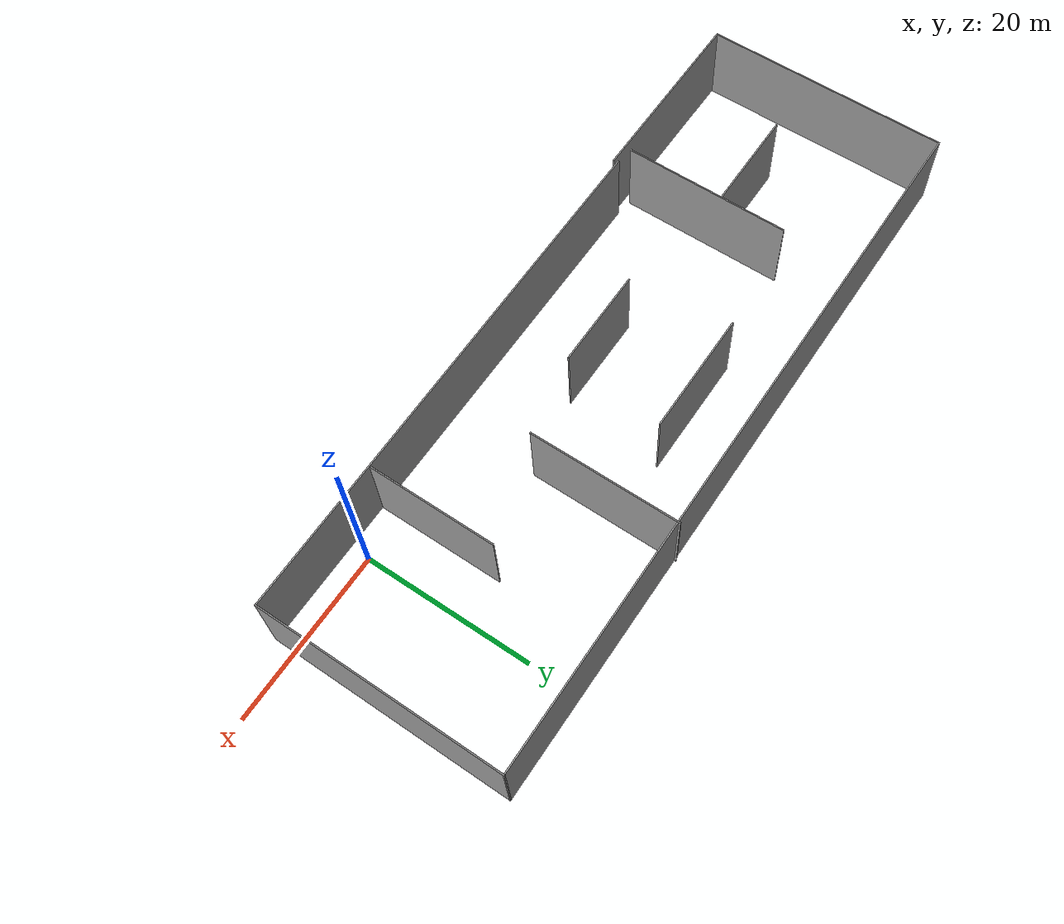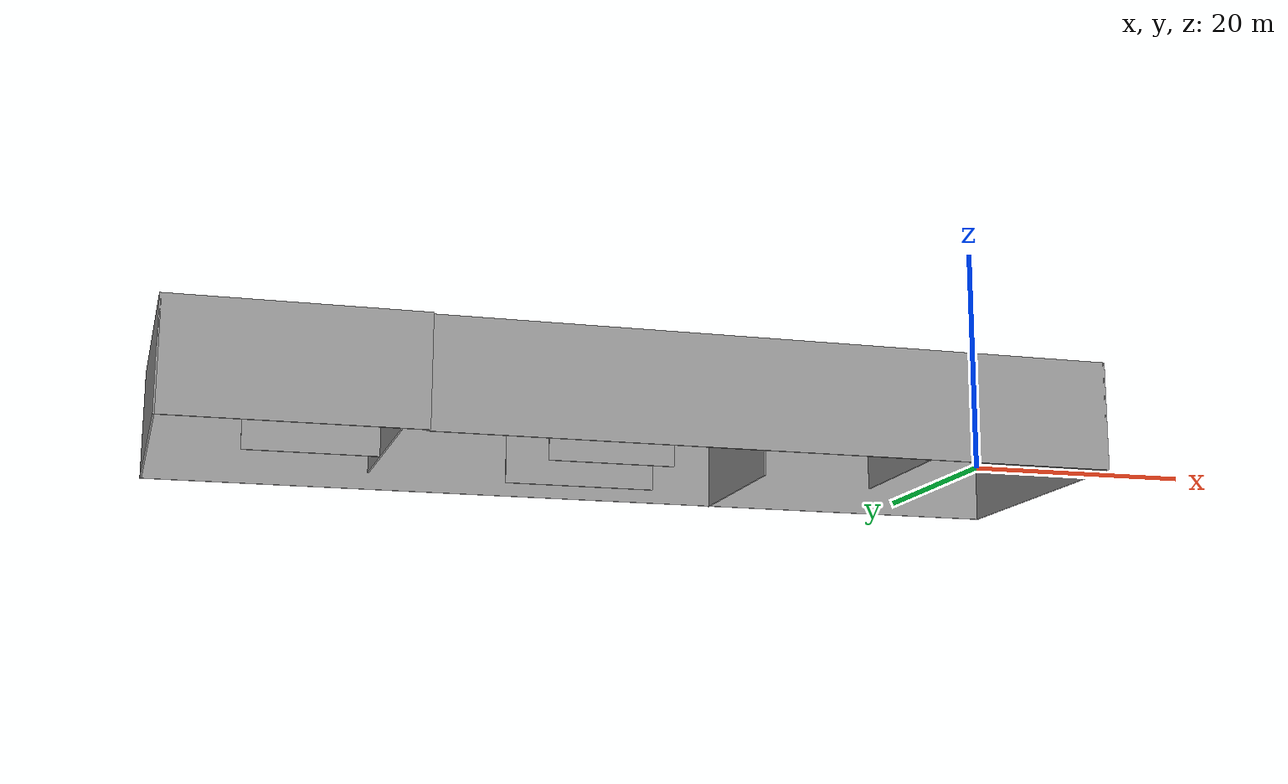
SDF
<?xml version='1.0'?>
<sdf version='1.7'>
  <model name='Untitled2'>
    <pose>-30.229 11.7135 0 0 -0 0</pose>
    <link name='Wall_12'>
      <collision name='Wall_12_Collision'>
        <geometry>
          <box>
            <size>15 0.15 10</size>
          </box>
        </geometry>
        <pose>0 0 5 0 -0 0</pose>
      </collision>
      <visual name='Wall_12_Visual'>
        <pose>0 0 5 0 -0 0</pose>
        <geometry>
          <box>
            <size>15 0.15 10</size>
          </box>
        </geometry>
        <material>
          <script>
            <uri>file://media/materials/scripts/gazebo.material</uri>
            <name>Gazebo/Grey</name>
          </script>
          <ambient>1 1 1 1</ambient>
        </material>
        <meta>
          <layer>0</layer>
        </meta>
      </visual>
      <pose>24.794 -6.5635 0 0 -0 1.5708</pose>
    </link>
    <link name='Wall_14'>
      <collision name='Wall_14_Collision'>
        <geometry>
          <box>
            <size>17.75 0.15 10</size>
          </box>
        </geometry>
        <pose>0 0 5 0 -0 0</pose>
      </collision>
      <visual name='Wall_14_Visual'>
        <pose>0 0 5 0 -0 0</pose>
        <geometry>
          <box>
            <size>17.75 0.15 10</size>
          </box>
        </geometry>
        <material>
          <script>
            <uri>file://media/materials/scripts/gazebo.material</uri>
            <name>Gazebo/Grey</name>
          </script>
          <ambient>1 1 1 1</ambient>
        </material>
        <meta>
          <layer>0</layer>
        </meta>
      </visual>
      <pose>13.011 5.8525 0 0 -0 -1.5708</pose>
    </link>
    <link name='Wall_16'>
      <collision name='Wall_16_Collision'>
        <geometry>
          <box>
            <size>14.25 0.15 10</size>
          </box>
        </geometry>
        <pose>0 0 5 0 -0 0</pose>
      </collision>
      <visual name='Wall_16_Visual'>
        <pose>0 0 5 0 -0 0</pose>
        <geometry>
          <box>
            <size>14.25 0.15 10</size>
          </box>
        </geometry>
        <material>
          <script>
            <uri>file://media/materials/scripts/gazebo.material</uri>
            <name>Gazebo/Grey</name>
          </script>
          <ambient>1 1 1 1</ambient>
        </material>
        <meta>
          <layer>0</layer>
        </meta>
      </visual>
      <pose>-2.034 7.2875 0 0 -0 0</pose>
    </link>
    <link name='Wall_18'>
      <collision name='Wall_18_Collision'>
        <geometry>
          <box>
            <size>11.5 0.15 10</size>
          </box>
        </geometry>
        <pose>0 0 5 0 -0 0</pose>
      </collision>
      <visual name='Wall_18_Visual'>
        <pose>0 0 5 0 -0 0</pose>
        <geometry>
          <box>
            <size>11.5 0.15 10</size>
          </box>
        </geometry>
        <material>
          <script>
            <uri>file://media/materials/scripts/gazebo.material</uri>
            <name>Gazebo/Grey</name>
          </script>
          <ambient>1 1 1 1</ambient>
        </material>
        <meta>
          <layer>0</layer>
        </meta>
      </visual>
      <pose>-1.936 -4.6595 0 0 -0 0</pose>
    </link>
    <link name='Wall_20'>
      <collision name='Wall_20_Collision'>
        <geometry>
          <box>
            <size>19.75 0.15 10</size>
          </box>
        </geometry>
        <pose>0 0 5 0 -0 0</pose>
      </collision>
      <visual name='Wall_20_Visual'>
        <pose>0 0 5 0 -0 0</pose>
        <geometry>
          <box>
            <size>19.75 0.15 10</size>
          </box>
        </geometry>
        <material>
          <script>
            <uri>file://media/materials/scripts/gazebo.material</uri>
            <name>Gazebo/Grey</name>
          </script>
          <ambient>1 1 1 1</ambient>
        </material>
        <meta>
          <layer>0</layer>
        </meta>
      </visual>
      <pose>-22.177 -3.9855 0 0 -0 -1.5708</pose>
    </link>
    <link name='Wall_23'>
      <collision name='Wall_23_Collision'>
        <geometry>
          <box>
            <size>12 0.15 10</size>
          </box>
        </geometry>
        <pose>0 0 5 0 -0 0</pose>
      </collision>
      <visual name='Wall_23_Visual'>
        <pose>0 0 5 0 -0 0</pose>
        <geometry>
          <box>
            <size>12 0.15 10</size>
          </box>
        </geometry>
        <material>
          <script>
            <uri>file://media/materials/scripts/gazebo.material</uri>
            <name>Gazebo/Grey</name>
          </script>
          <ambient>1 1 1 1</ambient>
        </material>
        <meta>
          <layer>0</layer>
        </meta>
      </visual>
      <pose>-28.266 -2.0415 0 0 -0 3.14159</pose>
    </link>
    <link name='Wall_3'>
      <collision name='Wall_3_Collision'>
        <geometry>
          <box>
            <size>62.25 0.15 10</size>
          </box>
        </geometry>
        <pose>0 0 5 0 -0 0</pose>
      </collision>
      <visual name='Wall_3_Visual'>
        <pose>0 0 5 0 -0 0</pose>
        <geometry>
          <box>
            <size>62.25 0.15 10</size>
          </box>
        </geometry>
        <material>
          <script>
            <uri>file://media/materials/scripts/gazebo.material</uri>
            <name>Gazebo/Grey</name>
          </script>
          <ambient>1 1 1 1</ambient>
        </material>
        <meta>
          <layer>0</layer>
        </meta>
      </visual>
      <pose>11 -14.1525 0 0 -0 0</pose>
    </link>
    <link name='Wall_5'>
      <collision name='Wall_5_Collision'>
        <geometry>
          <box>
            <size>28.75 0.15 10</size>
          </box>
        </geometry>
        <pose>0 0 5 0 -0 0</pose>
      </collision>
      <visual name='Wall_5_Visual'>
        <pose>0 0 5 0 -0 0</pose>
        <geometry>
          <box>
            <size>28.75 0.15 10</size>
          </box>
        </geometry>
        <material>
          <script>
            <uri>file://media/materials/scripts/gazebo.material</uri>
            <name>Gazebo/Grey</name>
          </script>
          <ambient>1 1 1 1</ambient>
        </material>
        <meta>
          <layer>0</layer>
        </meta>
      </visual>
      <pose>42.05 0.1475 0 0 -0 1.5708</pose>
    </link>
    <link name='Wall_6'>
      <collision name='Wall_6_Collision'>
        <geometry>
          <box>
            <size>84.25 0.15 10</size>
          </box>
        </geometry>
        <pose>0 0 5 0 -0 0</pose>
      </collision>
      <visual name='Wall_6_Visual'>
        <pose>0 0 5 0 -0 0</pose>
        <geometry>
          <box>
            <size>84.25 0.15 10</size>
          </box>
        </geometry>
        <material>
          <script>
            <uri>file://media/materials/scripts/gazebo.material</uri>
            <name>Gazebo/Grey</name>
          </script>
          <ambient>1 1 1 1</ambient>
        </material>
        <meta>
          <layer>0</layer>
        </meta>
      </visual>
      <pose>1e-06 14.4475 0 0 -0 3.14159</pose>
    </link>
    <link name='Wall_7'>
      <collision name='Wall_7_Collision'>
        <geometry>
          <box>
            <size>29.25 0.15 10</size>
          </box>
        </geometry>
        <pose>0 0 5 0 -0 0</pose>
      </collision>
      <visual name='Wall_7_Visual'>
        <pose>0 0 5 0 -0 0</pose>
        <geometry>
          <box>
            <size>29.25 0.15 10</size>
          </box>
        </geometry>
        <material>
          <script>
            <uri>file://media/materials/scripts/gazebo.material</uri>
            <name>Gazebo/Grey</name>
          </script>
          <ambient>1 1 1 1</ambient>
        </material>
        <meta>
          <layer>0</layer>
        </meta>
      </visual>
      <pose>-42.05 -0.1025 0 0 -0 -1.5708</pose>
    </link>
    <link name='Wall_8'>
      <collision name='Wall_8_Collision'>
        <geometry>
          <box>
            <size>22.25 0.15 10</size>
          </box>
        </geometry>
        <pose>0 0 5 0 -0 0</pose>
      </collision>
      <visual name='Wall_8_Visual'>
        <pose>0 0 5 0 -0 0</pose>
        <geometry>
          <box>
            <size>22.25 0.15 10</size>
          </box>
        </geometry>
        <material>
          <script>
            <uri>file://media/materials/scripts/gazebo.material</uri>
            <name>Gazebo/Grey</name>
          </script>
          <ambient>1 1 1 1</ambient>
        </material>
        <meta>
          <layer>0</layer>
        </meta>
      </visual>
      <pose>-31 -14.6525 0 0 -0 0</pose>
    </link>
    <static>1</static>
  </model>
</sdf>
